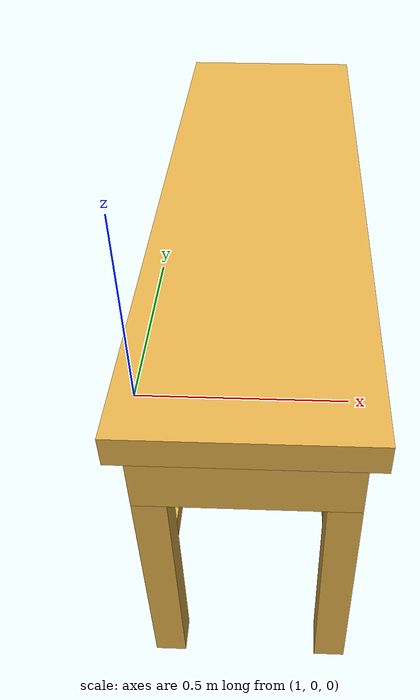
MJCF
<mujoco model="simpleWoodTable">
  <asset>
    <!-- Define yellow wood material -->
    <material name="yellow_wood" rgba="0.9 0.7 0.3 1"/>
  </asset>

  <worldbody>

    <!-- Table structure -->
    <body name="simpleWoodTable" pos="1.3 0 0">
      <!-- Tabletop -->
      <geom type="box" size=".185 .6 .025" pos="0 0 0.535" material="yellow_wood"/>

      <!-- Support layer -->
      <geom type="box" size=" 0.16 0.59 0.05" pos="0 0 0.46" material="yellow_wood"/>

      <!-- Legs -->
      <geom type="box" size="0.025 0.025 0.205" pos="0.135 -0.565  0.205" material="yellow_wood"/>
      <geom type="box" size="0.025 0.025 0.205" pos="-0.135 -0.565  0.205" material="yellow_wood"/>
      <geom type="box" size="0.025 0.025 0.205" pos="0.135 0.565  0.205" material="yellow_wood"/>
      <geom type="box" size="0.025 0.025 0.205" pos="-0.135 0.565  0.205" material="yellow_wood"/>

      <!-- Reinforcement beams -->
      <geom type="box" size="0.02 0.565  0.02" pos="0.135 0 0.25" material="yellow_wood"/>
      <geom type="box" size="0.02 0.565 0.02" pos="-0.135 0 0.25" material="yellow_wood"/>
    </body>

    <!-- Overhead camera -->
    <camera name="overhead" pos="0 -1.5 1.5" mode="fixed" quat="0.707 0 0.707 0"/>
  </worldbody>
</mujoco>
